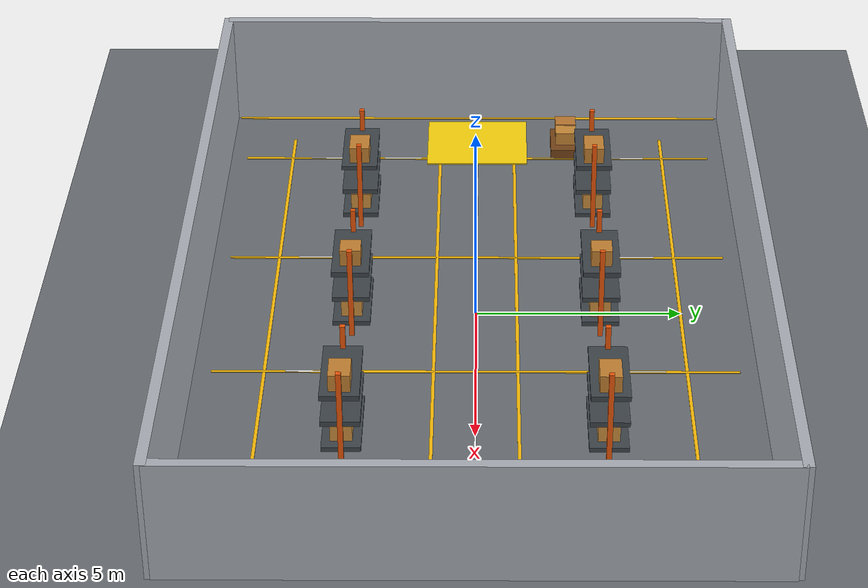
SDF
<?xml version="1.0" ?>

<sdf version="1.10">

  <world name="warehouse">

    <!-- GAZEBO SYSTEM PLUGINS                                    -->

    <plugin filename="gz-sim-physics-system" name="gz::sim::systems::Physics">
    </plugin>

    <plugin filename="gz-sim-scene-broadcaster-system" name="gz::sim::systems::SceneBroadcaster">
    </plugin>

    <plugin filename="gz-sim-user-commands-system" name="gz::sim::systems::UserCommands">
    </plugin>

    <plugin filename="gz-sim-sensors-system" name="gz::sim::systems::Sensors">
      <render_engine>ogre2</render_engine>
    </plugin>

    <!-- PHYSICS                                                   -->

    <physics name="default_physics" type="ode">
      <max_step_size>0.001</max_step_size>
      <real_time_factor>1</real_time_factor>
      <real_time_update_rate>1000</real_time_update_rate>
    </physics>

    <!-- SCENE                                                     -->

    <scene>
      <ambient>0.65 0.65 0.65 1</ambient>
      <background>0.18 0.20 0.22 1</background>
      <shadows>true</shadows>
    </scene>

    <!-- GROUND                                                    -->

    <model name="ground">
      <static>true</static>

      <link name="link">

        <collision name="collision">
          <geometry>
            <plane>
              <normal>0 0 1</normal>
              <size>20 14</size>
            </plane>
          </geometry>
        </collision>

        <visual name="visual">
          <geometry>
            <plane>
              <normal>0 0 1</normal>
              <size>20 14</size>
            </plane>
          </geometry>

          <material>
            <ambient>0.32 0.34 0.36 1</ambient>
            <diffuse>0.42 0.44 0.46 1</diffuse>
          </material>
        </visual>

      </link>
    </model>

    <!-- WAREHOUSE BOUNDARY WALLS                                  -->

    <!-- North wall -->
    <model name="wall_north">
      <static>true</static>
      <pose>0 6.8 1.5 0 0 0</pose>

      <link name="link">

        <collision name="collision">
          <geometry>
            <box>
              <size>20 0.25 3</size>
            </box>
          </geometry>
        </collision>

        <visual name="visual">
          <geometry>
            <box>
              <size>20 0.25 3</size>
            </box>
          </geometry>

          <material>
            <ambient>0.55 0.57 0.60 1</ambient>
            <diffuse>0.68 0.70 0.73 1</diffuse>
          </material>
        </visual>

      </link>
    </model>

    <!-- South wall -->
    <model name="wall_south">
      <static>true</static>
      <pose>0 -6.8 1.5 0 0 0</pose>

      <link name="link">

        <collision name="collision">
          <geometry>
            <box>
              <size>20 0.25 3</size>
            </box>
          </geometry>
        </collision>

        <visual name="visual">
          <geometry>
            <box>
              <size>20 0.25 3</size>
            </box>
          </geometry>

          <material>
            <ambient>0.55 0.57 0.60 1</ambient>
            <diffuse>0.68 0.70 0.73 1</diffuse>
          </material>
        </visual>

      </link>
    </model>

    <!-- West wall -->
    <model name="wall_west">
      <static>true</static>
      <pose>-9.9 0 1.5 0 0 0</pose>

      <link name="link">

        <collision name="collision">
          <geometry>
            <box>
              <size>0.25 13.6 3</size>
            </box>
          </geometry>
        </collision>

        <visual name="visual">
          <geometry>
            <box>
              <size>0.25 13.6 3</size>
            </box>
          </geometry>

          <material>
            <ambient>0.55 0.57 0.60 1</ambient>
            <diffuse>0.68 0.70 0.73 1</diffuse>
          </material>
        </visual>

      </link>
    </model>

    <!-- East wall -->
    <model name="wall_east">
      <static>true</static>
      <pose>9.9 0 1.5 0 0 0</pose>

      <link name="link">

        <collision name="collision">
          <geometry>
            <box>
              <size>0.25 13.6 3</size>
            </box>
          </geometry>
        </collision>

        <visual name="visual">
          <geometry>
            <box>
              <size>0.25 13.6 3</size>
            </box>
          </geometry>

          <material>
            <ambient>0.55 0.57 0.60 1</ambient>
            <diffuse>0.68 0.70 0.73 1</diffuse>
          </material>
        </visual>

      </link>
    </model>

    <!-- SAFETY STRIPES                                            -->

    <!-- West safety stripe -->
    <model name="safety_stripe_west">
      <static>true</static>
      <pose>-9.72 0 0.02 0 0 0</pose>

      <link name="link">

        <visual name="stripe">
          <geometry>
            <box>
              <size>0.08 13.2 0.02</size>
            </box>
          </geometry>

          <material>
            <ambient>0.95 0.65 0.05 1</ambient>
            <diffuse>1.0 0.75 0.05 1</diffuse>
          </material>
        </visual>

      </link>
    </model>

    <!-- East safety stripe -->
    <model name="safety_stripe_east">
      <static>true</static>
      <pose>9.72 0 0.02 0 0 0</pose>

      <link name="link">

        <visual name="stripe">
          <geometry>
            <box>
              <size>0.08 13.2 0.02</size>
            </box>
          </geometry>

          <material>
            <ambient>0.95 0.65 0.05 1</ambient>
            <diffuse>1.0 0.75 0.05 1</diffuse>
          </material>
        </visual>

      </link>
    </model>

    <!-- SHELF 1                                                   -->

    <model name="shelf_1">
      <static>true</static>
      <pose>-5 3.0 0 0 0 0</pose>

      <link name="rack">

        <!-- Collision envelope -->
        <collision name="collision">
          <pose>0 0 1.2 0 0 0</pose>
          <geometry>
            <box>
              <size>2.1 1.0 2.4</size>
            </box>
          </geometry>
        </collision>

        <!-- Uprights -->
        <visual name="post_left">
          <pose>-0.92 0 1.2 0 0 0</pose>
          <geometry>
            <box>
              <size>0.12 0.12 2.4</size>
            </box>
          </geometry>
          <material>
            <ambient>0.75 0.22 0.03 1</ambient>
            <diffuse>0.95 0.35 0.04 1</diffuse>
          </material>
        </visual>

        <visual name="post_right">
          <pose>0.92 0 1.2 0 0 0</pose>
          <geometry>
            <box>
              <size>0.12 0.12 2.4</size>
            </box>
          </geometry>
          <material>
            <ambient>0.75 0.22 0.03 1</ambient>
            <diffuse>0.95 0.35 0.04 1</diffuse>
          </material>
        </visual>

        <!-- Shelf levels -->
        <visual name="level_1">
          <pose>0 0 0.35 0 0 0</pose>
          <geometry>
            <box>
              <size>1.95 0.9 0.12</size>
            </box>
          </geometry>
          <material>
            <ambient>0.18 0.20 0.22 1</ambient>
            <diffuse>0.25 0.28 0.30 1</diffuse>
          </material>
        </visual>

        <visual name="level_2">
          <pose>0 0 1.05 0 0 0</pose>
          <geometry>
            <box>
              <size>1.95 0.9 0.12</size>
            </box>
          </geometry>
          <material>
            <ambient>0.18 0.20 0.22 1</ambient>
            <diffuse>0.25 0.28 0.30 1</diffuse>
          </material>
        </visual>

        <visual name="level_3">
          <pose>0 0 1.75 0 0 0</pose>
          <geometry>
            <box>
              <size>1.95 0.9 0.12</size>
            </box>
          </geometry>
          <material>
            <ambient>0.18 0.20 0.22 1</ambient>
            <diffuse>0.25 0.28 0.30 1</diffuse>
          </material>
        </visual>

        <!-- Cartons -->
        <visual name="box_1">
          <pose>-0.55 0 0.62 0 0 0</pose>
          <geometry>
            <box>
              <size>0.55 0.55 0.45</size>
            </box>
          </geometry>
          <material>
            <ambient>0.50 0.30 0.12 1</ambient>
            <diffuse>0.70 0.45 0.20 1</diffuse>
          </material>
        </visual>

        <visual name="box_2">
          <pose>0.42 0 0.62 0 0 0</pose>
          <geometry>
            <box>
              <size>0.65 0.50 0.42</size>
            </box>
          </geometry>
          <material>
            <ambient>0.65 0.42 0.16 1</ambient>
            <diffuse>0.82 0.58 0.25 1</diffuse>
          </material>
        </visual>

        <visual name="box_3">
          <pose>-0.30 0 1.32 0 0 0</pose>
          <geometry>
            <box>
              <size>0.50 0.55 0.40</size>
            </box>
          </geometry>
          <material>
            <ambient>0.40 0.24 0.10 1</ambient>
            <diffuse>0.58 0.36 0.15 1</diffuse>
          </material>
        </visual>

        <visual name="box_4">
          <pose>0.45 0 2.02 0 0 0</pose>
          <geometry>
            <box>
              <size>0.70 0.50 0.42</size>
            </box>
          </geometry>
          <material>
            <ambient>0.60 0.38 0.14 1</ambient>
            <diffuse>0.78 0.52 0.20 1</diffuse>
          </material>
        </visual>

      </link>
    </model>

    <!-- SHELF 2                                                   -->

    <model name="shelf_2">
      <static>true</static>
      <pose>0 3.0 0 0 0 0</pose>

      <link name="rack">

        <collision name="collision">
          <pose>0 0 1.2 0 0 0</pose>
          <geometry>
            <box>
              <size>2.1 1.0 2.4</size>
            </box>
          </geometry>
        </collision>

        <visual name="post_left">
          <pose>-0.92 0 1.2 0 0 0</pose>
          <geometry>
            <box>
              <size>0.12 0.12 2.4</size>
            </box>
          </geometry>
          <material>
            <ambient>0.75 0.22 0.03 1</ambient>
            <diffuse>0.95 0.35 0.04 1</diffuse>
          </material>
        </visual>

        <visual name="post_right">
          <pose>0.92 0 1.2 0 0 0</pose>
          <geometry>
            <box>
              <size>0.12 0.12 2.4</size>
            </box>
          </geometry>
          <material>
            <ambient>0.75 0.22 0.03 1</ambient>
            <diffuse>0.95 0.35 0.04 1</diffuse>
          </material>
        </visual>

        <visual name="level_1">
          <pose>0 0 0.35 0 0 0</pose>
          <geometry>
            <box>
              <size>1.95 0.9 0.12</size>
            </box>
          </geometry>
          <material>
            <ambient>0.18 0.20 0.22 1</ambient>
            <diffuse>0.25 0.28 0.30 1</diffuse>
          </material>
        </visual>

        <visual name="level_2">
          <pose>0 0 1.05 0 0 0</pose>
          <geometry>
            <box>
              <size>1.95 0.9 0.12</size>
            </box>
          </geometry>
          <material>
            <ambient>0.18 0.20 0.22 1</ambient>
            <diffuse>0.25 0.28 0.30 1</diffuse>
          </material>
        </visual>

        <visual name="level_3">
          <pose>0 0 1.75 0 0 0</pose>
          <geometry>
            <box>
              <size>1.95 0.9 0.12</size>
            </box>
          </geometry>
          <material>
            <ambient>0.18 0.20 0.22 1</ambient>
            <diffuse>0.25 0.28 0.30 1</diffuse>
          </material>
        </visual>

        <visual name="box_1">
          <pose>-0.55 0 0.62 0 0 0</pose>
          <geometry>
            <box>
              <size>0.55 0.55 0.45</size>
            </box>
          </geometry>
          <material>
            <ambient>0.50 0.30 0.12 1</ambient>
            <diffuse>0.70 0.45 0.20 1</diffuse>
          </material>
        </visual>

        <visual name="box_2">
          <pose>0.42 0 0.62 0 0 0</pose>
          <geometry>
            <box>
              <size>0.65 0.50 0.42</size>
            </box>
          </geometry>
          <material>
            <ambient>0.65 0.42 0.16 1</ambient>
            <diffuse>0.82 0.58 0.25 1</diffuse>
          </material>
        </visual>

        <visual name="box_3">
          <pose>-0.35 0 1.32 0 0 0</pose>
          <geometry>
            <box>
              <size>0.60 0.50 0.40</size>
            </box>
          </geometry>
          <material>
            <ambient>0.40 0.24 0.10 1</ambient>
            <diffuse>0.58 0.36 0.15 1</diffuse>
          </material>
        </visual>

        <visual name="box_4">
          <pose>0.42 0 2.02 0 0 0</pose>
          <geometry>
            <box>
              <size>0.50 0.50 0.42</size>
            </box>
          </geometry>
          <material>
            <ambient>0.60 0.38 0.14 1</ambient>
            <diffuse>0.78 0.52 0.20 1</diffuse>
          </material>
        </visual>

      </link>
    </model>

    <!-- SHELF 3                                                   -->

    <model name="shelf_3">
      <static>true</static>
      <pose>5 3.0 0 0 0 0</pose>

      <link name="rack">

        <collision name="collision">
          <pose>0 0 1.2 0 0 0</pose>
          <geometry>
            <box>
              <size>2.1 1.0 2.4</size>
            </box>
          </geometry>
        </collision>

        <visual name="post_left">
          <pose>-0.92 0 1.2 0 0 0</pose>
          <geometry>
            <box>
              <size>0.12 0.12 2.4</size>
            </box>
          </geometry>
          <material>
            <ambient>0.75 0.22 0.03 1</ambient>
            <diffuse>0.95 0.35 0.04 1</diffuse>
          </material>
        </visual>

        <visual name="post_right">
          <pose>0.92 0 1.2 0 0 0</pose>
          <geometry>
            <box>
              <size>0.12 0.12 2.4</size>
            </box>
          </geometry>
          <material>
            <ambient>0.75 0.22 0.03 1</ambient>
            <diffuse>0.95 0.35 0.04 1</diffuse>
          </material>
        </visual>

        <visual name="level_1">
          <pose>0 0 0.35 0 0 0</pose>
          <geometry>
            <box>
              <size>1.95 0.9 0.12</size>
            </box>
          </geometry>
          <material>
            <ambient>0.18 0.20 0.22 1</ambient>
            <diffuse>0.25 0.28 0.30 1</diffuse>
          </material>
        </visual>

        <visual name="level_2">
          <pose>0 0 1.05 0 0 0</pose>
          <geometry>
            <box>
              <size>1.95 0.9 0.12</size>
            </box>
          </geometry>
          <material>
            <ambient>0.18 0.20 0.22 1</ambient>
            <diffuse>0.25 0.28 0.30 1</diffuse>
          </material>
        </visual>

        <visual name="level_3">
          <pose>0 0 1.75 0 0 0</pose>
          <geometry>
            <box>
              <size>1.95 0.9 0.12</size>
            </box>
          </geometry>
          <material>
            <ambient>0.18 0.20 0.22 1</ambient>
            <diffuse>0.25 0.28 0.30 1</diffuse>
          </material>
        </visual>

        <visual name="box_1">
          <pose>-0.55 0 0.62 0 0 0</pose>
          <geometry>
            <box>
              <size>0.55 0.55 0.45</size>
            </box>
          </geometry>
          <material>
            <ambient>0.50 0.30 0.12 1</ambient>
            <diffuse>0.70 0.45 0.20 1</diffuse>
          </material>
        </visual>

        <visual name="box_2">
          <pose>0.42 0 0.62 0 0 0</pose>
          <geometry>
            <box>
              <size>0.65 0.50 0.42</size>
            </box>
          </geometry>
          <material>
            <ambient>0.65 0.42 0.16 1</ambient>
            <diffuse>0.82 0.58 0.25 1</diffuse>
          </material>
        </visual>

        <visual name="box_3">
          <pose>-0.30 0 1.32 0 0 0</pose>
          <geometry>
            <box>
              <size>0.50 0.55 0.40</size>
            </box>
          </geometry>
          <material>
            <ambient>0.40 0.24 0.10 1</ambient>
            <diffuse>0.58 0.36 0.15 1</diffuse>
          </material>
        </visual>

        <visual name="box_4">
          <pose>0.45 0 2.02 0 0 0</pose>
          <geometry>
            <box>
              <size>0.70 0.50 0.42</size>
            </box>
          </geometry>
          <material>
            <ambient>0.60 0.38 0.14 1</ambient>
            <diffuse>0.78 0.52 0.20 1</diffuse>
          </material>
        </visual>

      </link>
    </model>

    <!-- SHELF 4                                                   -->

    <model name="shelf_4">
      <static>true</static>
      <pose>-5 -3.0 0 0 0 0</pose>

      <link name="rack">

        <collision name="collision">
          <pose>0 0 1.2 0 0 0</pose>
          <geometry>
            <box>
              <size>2.1 1.0 2.4</size>
            </box>
          </geometry>
        </collision>

        <visual name="post_left">
          <pose>-0.92 0 1.2 0 0 0</pose>
          <geometry>
            <box>
              <size>0.12 0.12 2.4</size>
            </box>
          </geometry>
          <material>
            <ambient>0.75 0.22 0.03 1</ambient>
            <diffuse>0.95 0.35 0.04 1</diffuse>
          </material>
        </visual>

        <visual name="post_right">
          <pose>0.92 0 1.2 0 0 0</pose>
          <geometry>
            <box>
              <size>0.12 0.12 2.4</size>
            </box>
          </geometry>
          <material>
            <ambient>0.75 0.22 0.03 1</ambient>
            <diffuse>0.95 0.35 0.04 1</diffuse>
          </material>
        </visual>

        <visual name="level_1">
          <pose>0 0 0.35 0 0 0</pose>
          <geometry>
            <box>
              <size>1.95 0.9 0.12</size>
            </box>
          </geometry>
          <material>
            <ambient>0.18 0.20 0.22 1</ambient>
            <diffuse>0.25 0.28 0.30 1</diffuse>
          </material>
        </visual>

        <visual name="level_2">
          <pose>0 0 1.05 0 0 0</pose>
          <geometry>
            <box>
              <size>1.95 0.9 0.12</size>
            </box>
          </geometry>
          <material>
            <ambient>0.18 0.20 0.22 1</ambient>
            <diffuse>0.25 0.28 0.30 1</diffuse>
          </material>
        </visual>

        <visual name="level_3">
          <pose>0 0 1.75 0 0 0</pose>
          <geometry>
            <box>
              <size>1.95 0.9 0.12</size>
            </box>
          </geometry>
          <material>
            <ambient>0.18 0.20 0.22 1</ambient>
            <diffuse>0.25 0.28 0.30 1</diffuse>
          </material>
        </visual>

        <visual name="box_1">
          <pose>-0.55 0 0.62 0 0 0</pose>
          <geometry>
            <box>
              <size>0.55 0.55 0.45</size>
            </box>
          </geometry>
          <material>
            <ambient>0.50 0.30 0.12 1</ambient>
            <diffuse>0.70 0.45 0.20 1</diffuse>
          </material>
        </visual>

        <visual name="box_2">
          <pose>0.42 0 0.62 0 0 0</pose>
          <geometry>
            <box>
              <size>0.65 0.50 0.42</size>
            </box>
          </geometry>
          <material>
            <ambient>0.65 0.42 0.16 1</ambient>
            <diffuse>0.82 0.58 0.25 1</diffuse>
          </material>
        </visual>

        <visual name="box_3">
          <pose>-0.30 0 1.32 0 0 0</pose>
          <geometry>
            <box>
              <size>0.50 0.55 0.40</size>
            </box>
          </geometry>
          <material>
            <ambient>0.40 0.24 0.10 1</ambient>
            <diffuse>0.58 0.36 0.15 1</diffuse>
          </material>
        </visual>

        <visual name="box_4">
          <pose>0.45 0 2.02 0 0 0</pose>
          <geometry>
            <box>
              <size>0.70 0.50 0.42</size>
            </box>
          </geometry>
          <material>
            <ambient>0.60 0.38 0.14 1</ambient>
            <diffuse>0.78 0.52 0.20 1</diffuse>
          </material>
        </visual>

      </link>
    </model>

    <!-- SHELF 5                                                   -->

    <model name="shelf_5">
      <static>true</static>
      <pose>0 -3.0 0 0 0 0</pose>

      <link name="rack">

        <collision name="collision">
          <pose>0 0 1.2 0 0 0</pose>
          <geometry>
            <box>
              <size>2.1 1.0 2.4</size>
            </box>
          </geometry>
        </collision>

        <visual name="post_left">
          <pose>-0.92 0 1.2 0 0 0</pose>
          <geometry>
            <box>
              <size>0.12 0.12 2.4</size>
            </box>
          </geometry>
          <material>
            <ambient>0.75 0.22 0.03 1</ambient>
            <diffuse>0.95 0.35 0.04 1</diffuse>
          </material>
        </visual>

        <visual name="post_right">
          <pose>0.92 0 1.2 0 0 0</pose>
          <geometry>
            <box>
              <size>0.12 0.12 2.4</size>
            </box>
          </geometry>
          <material>
            <ambient>0.75 0.22 0.03 1</ambient>
            <diffuse>0.95 0.35 0.04 1</diffuse>
          </material>
        </visual>

        <visual name="level_1">
          <pose>0 0 0.35 0 0 0</pose>
          <geometry>
            <box>
              <size>1.95 0.9 0.12</size>
            </box>
          </geometry>
          <material>
            <ambient>0.18 0.20 0.22 1</ambient>
            <diffuse>0.25 0.28 0.30 1</diffuse>
          </material>
        </visual>

        <visual name="level_2">
          <pose>0 0 1.05 0 0 0</pose>
          <geometry>
            <box>
              <size>1.95 0.9 0.12</size>
            </box>
          </geometry>
          <material>
            <ambient>0.18 0.20 0.22 1</ambient>
            <diffuse>0.25 0.28 0.30 1</diffuse>
          </material>
        </visual>

        <visual name="level_3">
          <pose>0 0 1.75 0 0 0</pose>
          <geometry>
            <box>
              <size>1.95 0.9 0.12</size>
            </box>
          </geometry>
          <material>
            <ambient>0.18 0.20 0.22 1</ambient>
            <diffuse>0.25 0.28 0.30 1</diffuse>
          </material>
        </visual>

        <visual name="box_1">
          <pose>-0.55 0 0.62 0 0 0</pose>
          <geometry>
            <box>
              <size>0.55 0.55 0.45</size>
            </box>
          </geometry>
          <material>
            <ambient>0.50 0.30 0.12 1</ambient>
            <diffuse>0.70 0.45 0.20 1</diffuse>
          </material>
        </visual>

        <visual name="box_2">
          <pose>0.42 0 0.62 0 0 0</pose>
          <geometry>
            <box>
              <size>0.65 0.50 0.42</size>
            </box>
          </geometry>
          <material>
            <ambient>0.65 0.42 0.16 1</ambient>
            <diffuse>0.82 0.58 0.25 1</diffuse>
          </material>
        </visual>

        <visual name="box_3">
          <pose>-0.35 0 1.32 0 0 0</pose>
          <geometry>
            <box>
              <size>0.60 0.50 0.40</size>
            </box>
          </geometry>
          <material>
            <ambient>0.40 0.24 0.10 1</ambient>
            <diffuse>0.58 0.36 0.15 1</diffuse>
          </material>
        </visual>

        <visual name="box_4">
          <pose>0.42 0 2.02 0 0 0</pose>
          <geometry>
            <box>
              <size>0.50 0.50 0.42</size>
            </box>
          </geometry>
          <material>
            <ambient>0.60 0.38 0.14 1</ambient>
            <diffuse>0.78 0.52 0.20 1</diffuse>
          </material>
        </visual>

      </link>
    </model>

    <!-- SHELF 6                                                   -->

    <model name="shelf_6">
      <static>true</static>
      <pose>5 -3.0 0 0 0 0</pose>

      <link name="rack">

        <collision name="collision">
          <pose>0 0 1.2 0 0 0</pose>
          <geometry>
            <box>
              <size>2.1 1.0 2.4</size>
            </box>
          </geometry>
        </collision>

        <visual name="post_left">
          <pose>-0.92 0 1.2 0 0 0</pose>
          <geometry>
            <box>
              <size>0.12 0.12 2.4</size>
            </box>
          </geometry>
          <material>
            <ambient>0.75 0.22 0.03 1</ambient>
            <diffuse>0.95 0.35 0.04 1</diffuse>
          </material>
        </visual>

        <visual name="post_right">
          <pose>0.92 0 1.2 0 0 0</pose>
          <geometry>
            <box>
              <size>0.12 0.12 2.4</size>
            </box>
          </geometry>
          <material>
            <ambient>0.75 0.22 0.03 1</ambient>
            <diffuse>0.95 0.35 0.04 1</diffuse>
          </material>
        </visual>

        <visual name="level_1">
          <pose>0 0 0.35 0 0 0</pose>
          <geometry>
            <box>
              <size>1.95 0.9 0.12</size>
            </box>
          </geometry>
          <material>
            <ambient>0.18 0.20 0.22 1</ambient>
            <diffuse>0.25 0.28 0.30 1</diffuse>
          </material>
        </visual>

        <visual name="level_2">
          <pose>0 0 1.05 0 0 0</pose>
          <geometry>
            <box>
              <size>1.95 0.9 0.12</size>
            </box>
          </geometry>
          <material>
            <ambient>0.18 0.20 0.22 1</ambient>
            <diffuse>0.25 0.28 0.30 1</diffuse>
          </material>
        </visual>

        <visual name="level_3">
          <pose>0 0 1.75 0 0 0</pose>
          <geometry>
            <box>
              <size>1.95 0.9 0.12</size>
            </box>
          </geometry>
          <material>
            <ambient>0.18 0.20 0.22 1</ambient>
            <diffuse>0.25 0.28 0.30 1</diffuse>
          </material>
        </visual>

        <visual name="box_1">
          <pose>-0.55 0 0.62 0 0 0</pose>
          <geometry>
            <box>
              <size>0.55 0.55 0.45</size>
            </box>
          </geometry>
          <material>
            <ambient>0.50 0.30 0.12 1</ambient>
            <diffuse>0.70 0.45 0.20 1</diffuse>
          </material>
        </visual>

        <visual name="box_2">
          <pose>0.42 0 0.62 0 0 0</pose>
          <geometry>
            <box>
              <size>0.65 0.50 0.42</size>
            </box>
          </geometry>
          <material>
            <ambient>0.65 0.42 0.16 1</ambient>
            <diffuse>0.82 0.58 0.25 1</diffuse>
          </material>
        </visual>

        <visual name="box_3">
          <pose>-0.30 0 1.32 0 0 0</pose>
          <geometry>
            <box>
              <size>0.50 0.55 0.40</size>
            </box>
          </geometry>
          <material>
            <ambient>0.40 0.24 0.10 1</ambient>
            <diffuse>0.58 0.36 0.15 1</diffuse>
          </material>
        </visual>

        <visual name="box_4">
          <pose>0.45 0 2.02 0 0 0</pose>
          <geometry>
            <box>
              <size>0.70 0.50 0.42</size>
            </box>
          </geometry>
          <material>
            <ambient>0.60 0.38 0.14 1</ambient>
            <diffuse>0.78 0.52 0.20 1</diffuse>
          </material>
        </visual>

      </link>
    </model>

    <!-- LANE MARKINGS                                             -->

    <model name="lane_markings">
      <static>true</static>

      <link name="markings">

        <!-- Vertical lane boundary lines                         -->

        <visual name="lane_x_minus_7_5">
          <pose>-7.5 0 0.015 0 0 0</pose>
          <geometry>
            <box>
              <size>0.08 12.5 0.02</size>
            </box>
          </geometry>
          <material>
            <ambient>0.90 0.60 0.02 1</ambient>
            <diffuse>1 0.75 0.03 1</diffuse>
          </material>
        </visual>

        <visual name="lane_x_minus_2_5">
          <pose>-2.5 0 0.015 0 0 0</pose>
          <geometry>
            <box>
              <size>0.08 12.5 0.02</size>
            </box>
          </geometry>
          <material>
            <ambient>0.90 0.60 0.02 1</ambient>
            <diffuse>1 0.75 0.03 1</diffuse>
          </material>
        </visual>

        <visual name="lane_x_plus_2_5">
          <pose>2.5 0 0.015 0 0 0</pose>
          <geometry>
            <box>
              <size>0.08 12.5 0.02</size>
            </box>
          </geometry>
          <material>
            <ambient>0.90 0.60 0.02 1</ambient>
            <diffuse>1 0.75 0.03 1</diffuse>
          </material>
        </visual>

        <visual name="lane_x_plus_7_5">
          <pose>7.5 0 0.015 0 0 0</pose>
          <geometry>
            <box>
              <size>0.08 12.5 0.02</size>
            </box>
          </geometry>
          <material>
            <ambient>0.90 0.60 0.02 1</ambient>
            <diffuse>1 0.75 0.03 1</diffuse>
          </material>
        </visual>

        <!-- Horizontal cross-lane boundaries                      -->

        <visual name="cross_lane_top">
          <pose>0 5.0 0.015 0 0 0</pose>
          <geometry>
            <box>
              <size>17.0 0.08 0.02</size>
            </box>
          </geometry>
          <material>
            <ambient>0.90 0.60 0.02 1</ambient>
            <diffuse>1 0.75 0.03 1</diffuse>
          </material>
        </visual>

        <visual name="cross_lane_bottom">
          <pose>0 -5.0 0.015 0 0 0</pose>
          <geometry>
            <box>
              <size>17.0 0.08 0.02</size>
            </box>
          </geometry>
          <material>
            <ambient>0.90 0.60 0.02 1</ambient>
            <diffuse>1 0.75 0.03 1</diffuse>
          </material>
        </visual>

        <!-- Central traffic lane boundaries                       -->

        <visual name="central_lane_top">
          <pose>0 1.0 0.015 0 0 0</pose>
          <geometry>
            <box>
              <size>17.0 0.08 0.02</size>
            </box>
          </geometry>
          <material>
            <ambient>0.90 0.60 0.02 1</ambient>
            <diffuse>1 0.75 0.03 1</diffuse>
          </material>
        </visual>

        <visual name="central_lane_bottom">
          <pose>0 -1.0 0.015 0 0 0</pose>
          <geometry>
            <box>
              <size>17.0 0.08 0.02</size>
            </box>
          </geometry>
          <material>
            <ambient>0.90 0.60 0.02 1</ambient>
            <diffuse>1 0.75 0.03 1</diffuse>
          </material>
        </visual>

        <!-- Central lane dashed centerline                        -->

        <visual name="center_1">
          <pose>-7.0 0 0.018 0 0 0</pose>
          <geometry>
            <box>
              <size>1.0 0.05 0.02</size>
            </box>
          </geometry>
          <material>
            <ambient>0.85 0.85 0.85 1</ambient>
            <diffuse>1 1 1 1</diffuse>
          </material>
        </visual>

        <visual name="center_2">
          <pose>-5.0 0 0.018 0 0 0</pose>
          <geometry>
            <box>
              <size>1.0 0.05 0.02</size>
            </box>
          </geometry>
          <material>
            <ambient>0.85 0.85 0.85 1</ambient>
            <diffuse>1 1 1 1</diffuse>
          </material>
        </visual>

        <visual name="center_3">
          <pose>-3.0 0 0.018 0 0 0</pose>
          <geometry>
            <box>
              <size>1.0 0.05 0.02</size>
            </box>
          </geometry>
          <material>
            <ambient>0.85 0.85 0.85 1</ambient>
            <diffuse>1 1 1 1</diffuse>
          </material>
        </visual>

        <visual name="center_4">
          <pose>3.0 0 0.018 0 0 0</pose>
          <geometry>
            <box>
              <size>1.0 0.05 0.02</size>
            </box>
          </geometry>
          <material>
            <ambient>0.85 0.85 0.85 1</ambient>
            <diffuse>1 1 1 1</diffuse>
          </material>
        </visual>

        <visual name="center_5">
          <pose>5.0 0 0.018 0 0 0</pose>
          <geometry>
            <box>
              <size>1.0 0.05 0.02</size>
            </box>
          </geometry>
          <material>
            <ambient>0.85 0.85 0.85 1</ambient>
            <diffuse>1 1 1 1</diffuse>
          </material>
        </visual>

        <visual name="center_6">
          <pose>7.0 0 0.018 0 0 0</pose>
          <geometry>
            <box>
              <size>1.0 0.05 0.02</size>
            </box>
          </geometry>
          <material>
            <ambient>0.85 0.85 0.85 1</ambient>
            <diffuse>1 1 1 1</diffuse>
          </material>
        </visual>

        <!-- Vertical lane center markings                         -->

        <visual name="vertical_mark_1">
          <pose>-7.5 4.0 0.018 0 0 0</pose>
          <geometry>
            <box>
              <size>0.05 1.0 0.02</size>
            </box>
          </geometry>
          <material>
            <ambient>0.85 0.85 0.85 1</ambient>
            <diffuse>1 1 1 1</diffuse>
          </material>
        </visual>

        <visual name="vertical_mark_2">
          <pose>-7.5 2.0 0.018 0 0 0</pose>
          <geometry>
            <box>
              <size>0.05 1.0 0.02</size>
            </box>
          </geometry>
          <material>
            <ambient>0.85 0.85 0.85 1</ambient>
            <diffuse>1 1 1 1</diffuse>
          </material>
        </visual>

        <visual name="vertical_mark_3">
          <pose>-7.5 -2.0 0.018 0 0 0</pose>
          <geometry>
            <box>
              <size>0.05 1.0 0.02</size>
            </box>
          </geometry>
          <material>
            <ambient>0.85 0.85 0.85 1</ambient>
            <diffuse>1 1 1 1</diffuse>
          </material>
        </visual>

        <visual name="vertical_mark_4">
          <pose>-7.5 -4.0 0.018 0 0 0</pose>
          <geometry>
            <box>
              <size>0.05 1.0 0.02</size>
            </box>
          </geometry>
          <material>
            <ambient>0.85 0.85 0.85 1</ambient>
            <diffuse>1 1 1 1</diffuse>
          </material>
        </visual>

        <visual name="vertical_mark_5">
          <pose>-2.5 4.0 0.018 0 0 0</pose>
          <geometry>
            <box>
              <size>0.05 1.0 0.02</size>
            </box>
          </geometry>
          <material>
            <ambient>0.85 0.85 0.85 1</ambient>
            <diffuse>1 1 1 1</diffuse>
          </material>
        </visual>

        <visual name="vertical_mark_6">
          <pose>-2.5 -4.0 0.018 0 0 0</pose>
          <geometry>
            <box>
              <size>0.05 1.0 0.02</size>
            </box>
          </geometry>
          <material>
            <ambient>0.85 0.85 0.85 1</ambient>
            <diffuse>1 1 1 1</diffuse>
          </material>
        </visual>

        <visual name="vertical_mark_7">
          <pose>2.5 4.0 0.018 0 0 0</pose>
          <geometry>
            <box>
              <size>0.05 1.0 0.02</size>
            </box>
          </geometry>
          <material>
            <ambient>0.85 0.85 0.85 1</ambient>
            <diffuse>1 1 1 1</diffuse>
          </material>
        </visual>

        <visual name="vertical_mark_8">
          <pose>2.5 -4.0 0.018 0 0 0</pose>
          <geometry>
            <box>
              <size>0.05 1.0 0.02</size>
            </box>
          </geometry>
          <material>
            <ambient>0.85 0.85 0.85 1</ambient>
            <diffuse>1 1 1 1</diffuse>
          </material>
        </visual>

        <visual name="vertical_mark_9">
          <pose>7.5 4.0 0.018 0 0 0</pose>
          <geometry>
            <box>
              <size>0.05 1.0 0.02</size>
            </box>
          </geometry>
          <material>
            <ambient>0.85 0.85 0.85 1</ambient>
            <diffuse>1 1 1 1</diffuse>
          </material>
        </visual>

        <visual name="vertical_mark_10">
          <pose>7.5 2.0 0.018 0 0 0</pose>
          <geometry>
            <box>
              <size>0.05 1.0 0.02</size>
            </box>
          </geometry>
          <material>
            <ambient>0.85 0.85 0.85 1</ambient>
            <diffuse>1 1 1 1</diffuse>
          </material>
        </visual>

        <visual name="vertical_mark_11">
          <pose>7.5 -2.0 0.018 0 0 0</pose>
          <geometry>
            <box>
              <size>0.05 1.0 0.02</size>
            </box>
          </geometry>
          <material>
            <ambient>0.85 0.85 0.85 1</ambient>
            <diffuse>1 1 1 1</diffuse>
          </material>
        </visual>

        <visual name="vertical_mark_12">
          <pose>7.5 -4.0 0.018 0 0 0</pose>
          <geometry>
            <box>
              <size>0.05 1.0 0.02</size>
            </box>
          </geometry>
          <material>
            <ambient>0.85 0.85 0.85 1</ambient>
            <diffuse>1 1 1 1</diffuse>
          </material>
        </visual>

      </link>
    </model>

    <!-- PICKUP ZONE                                               -->

    <model name="pickup_zone">
      <static>true</static>
      <pose>-8.3 0 0.025 0 0 0</pose>

      <link name="zone">

        <visual name="floor">
          <geometry>
            <box>
              <size>2.2 2.6 0.04</size>
            </box>
          </geometry>

          <material>
            <ambient>0.02 0.35 0.12 1</ambient>
            <diffuse>0.03 0.55 0.18 1</diffuse>
          </material>
        </visual>

        <visual name="border">
          <pose>0 0 0.025 0 0 0</pose>
          <geometry>
            <box>
              <size>2.3 2.7 0.03</size>
            </box>
          </geometry>

          <material>
            <ambient>0.95 0.75 0.05 1</ambient>
            <diffuse>1 0.85 0.05 1</diffuse>
          </material>
        </visual>

      </link>
    </model>

    <!-- DROP-OFF ZONE                                             -->

    <model name="dropoff_zone">
      <static>true</static>
      <pose>8.3 0 0.025 0 0 0</pose>

      <link name="zone">

        <visual name="floor">
          <geometry>
            <box>
              <size>2.2 2.6 0.04</size>
            </box>
          </geometry>

          <material>
            <ambient>0.02 0.20 0.55 1</ambient>
            <diffuse>0.03 0.35 0.85 1</diffuse>
          </material>
        </visual>

        <visual name="border">
          <pose>0 0 0.025 0 0 0</pose>
          <geometry>
            <box>
              <size>2.3 2.7 0.03</size>
            </box>
          </geometry>

          <material>
            <ambient>0.95 0.75 0.05 1</ambient>
            <diffuse>1 0.85 0.05 1</diffuse>
          </material>
        </visual>

      </link>
    </model>

    <!-- PALLETS / CARTONS NEAR ZONES                              -->

    <model name="pickup_pallets">
      <static>true</static>
      <pose>-8.1 2.4 0.15 0 0 0</pose>

      <link name="pallet">

        <visual name="base">
          <geometry>
            <box>
              <size>1.2 0.8 0.25</size>
            </box>
          </geometry>
          <material>
            <ambient>0.32 0.18 0.07 1</ambient>
            <diffuse>0.48 0.28 0.10 1</diffuse>
          </material>
        </visual>

        <visual name="carton_1">
          <pose>-0.25 0 0.40 0 0 0</pose>
          <geometry>
            <box>
              <size>0.45 0.55 0.35</size>
            </box>
          </geometry>
          <material>
            <ambient>0.55 0.32 0.12 1</ambient>
            <diffuse>0.75 0.48 0.20 1</diffuse>
          </material>
        </visual>

        <visual name="carton_2">
          <pose>0.25 0 0.40 0 0 0</pose>
          <geometry>
            <box>
              <size>0.45 0.55 0.35</size>
            </box>
          </geometry>
          <material>
            <ambient>0.60 0.38 0.15 1</ambient>
            <diffuse>0.80 0.55 0.22 1</diffuse>
          </material>
        </visual>

      </link>
    </model>

    <model name="dropoff_pallets">
      <static>true</static>
      <pose>8.1 -2.4 0.15 0 0 0</pose>

      <link name="pallet">

        <visual name="base">
          <geometry>
            <box>
              <size>1.2 0.8 0.25</size>
            </box>
          </geometry>
          <material>
            <ambient>0.32 0.18 0.07 1</ambient>
            <diffuse>0.48 0.28 0.10 1</diffuse>
          </material>
        </visual>

        <visual name="carton_1">
          <pose>-0.25 0 0.40 0 0 0</pose>
          <geometry>
            <box>
              <size>0.45 0.55 0.35</size>
            </box>
          </geometry>
          <material>
            <ambient>0.55 0.32 0.12 1</ambient>
            <diffuse>0.75 0.48 0.20 1</diffuse>
          </material>
        </visual>

        <visual name="carton_2">
          <pose>0.25 0 0.40 0 0 0</pose>
          <geometry>
            <box>
              <size>0.45 0.55 0.35</size>
            </box>
          </geometry>
          <material>
            <ambient>0.60 0.38 0.15 1</ambient>
            <diffuse>0.80 0.55 0.22 1</diffuse>
          </material>
        </visual>

      </link>
    </model>

    <!-- OVERHEAD LIGHTS                                           -->

    <light name="warehouse_light_1" type="point">
      <pose>-6 4 5 0 0 0</pose>
      <diffuse>1 1 0.95 1</diffuse>
      <specular>0.4 0.4 0.4 1</specular>
      <attenuation>
        <range>12</range>
        <constant>0.8</constant>
        <linear>0.02</linear>
        <quadratic>0.005</quadratic>
      </attenuation>
    </light>

    <light name="warehouse_light_2" type="point">
      <pose>0 4 5 0 0 0</pose>
      <diffuse>1 1 0.95 1</diffuse>
      <specular>0.4 0.4 0.4 1</specular>
      <attenuation>
        <range>12</range>
        <constant>0.8</constant>
        <linear>0.02</linear>
        <quadratic>0.005</quadratic>
      </attenuation>
    </light>

    <light name="warehouse_light_3" type="point">
      <pose>6 4 5 0 0 0</pose>
      <diffuse>1 1 0.95 1</diffuse>
      <specular>0.4 0.4 0.4 1</specular>
      <attenuation>
        <range>12</range>
        <constant>0.8</constant>
        <linear>0.02</linear>
        <quadratic>0.005</quadratic>
      </attenuation>
    </light>

    <light name="warehouse_light_4" type="point">
      <pose>-6 -4 5 0 0 0</pose>
      <diffuse>1 1 0.95 1</diffuse>
      <specular>0.4 0.4 0.4 1</specular>
      <attenuation>
        <range>12</range>
        <constant>0.8</constant>
        <linear>0.02</linear>
        <quadratic>0.005</quadratic>
      </attenuation>
    </light>

    <light name="warehouse_light_5" type="point">
      <pose>0 -4 5 0 0 0</pose>
      <diffuse>1 1 0.95 1</diffuse>
      <specular>0.4 0.4 0.4 1</specular>
      <attenuation>
        <range>12</range>
        <constant>0.8</constant>
        <linear>0.02</linear>
        <quadratic>0.005</quadratic>
      </attenuation>
    </light>

    <light name="warehouse_light_6" type="point">
      <pose>6 -4 5 0 0 0</pose>
      <diffuse>1 1 0.95 1</diffuse>
      <specular>0.4 0.4 0.4 1</specular>
      <attenuation>
        <range>12</range>
        <constant>0.8</constant>
        <linear>0.02</linear>
        <quadratic>0.005</quadratic>
      </attenuation>
    </light>

    <!-- MAIN DIRECTIONAL LIGHT                                    -->

    <light name="sun" type="directional">
      <pose>0 0 10 0 0 0</pose>
      <cast_shadows>true</cast_shadows>
      <diffuse>0.75 0.78 0.82 1</diffuse>
      <specular>0.25 0.25 0.25 1</specular>
      <direction>-0.5 0.3 -1</direction>
    </light>

  </world>

</sdf>
